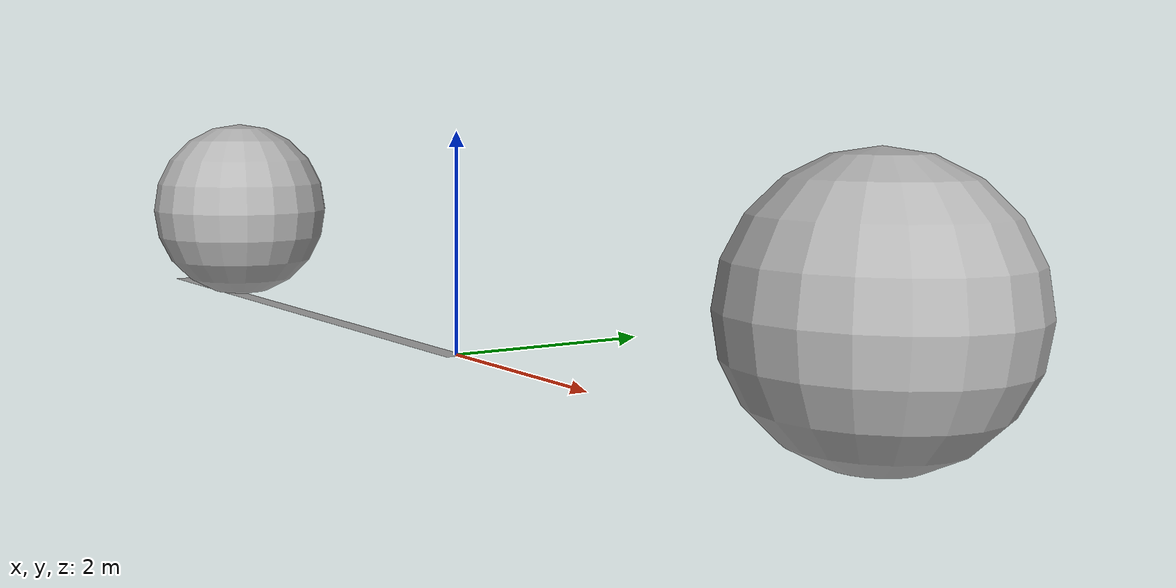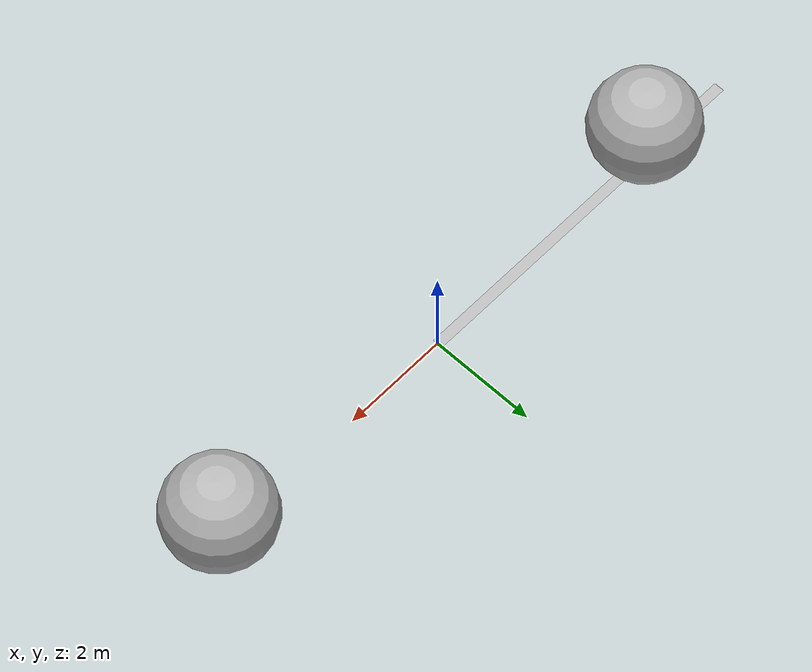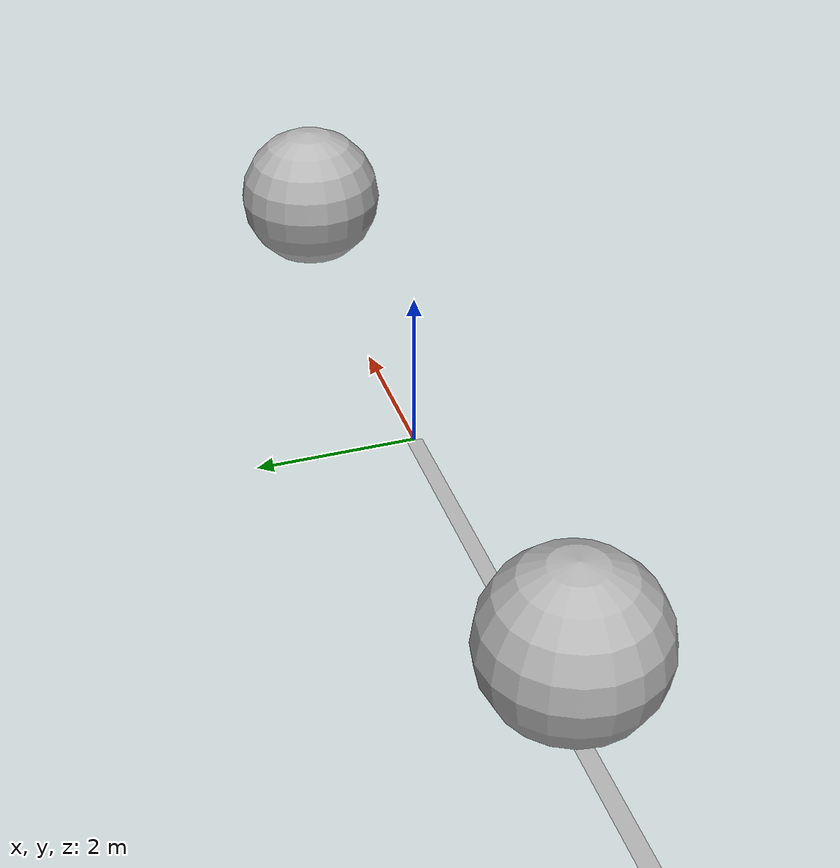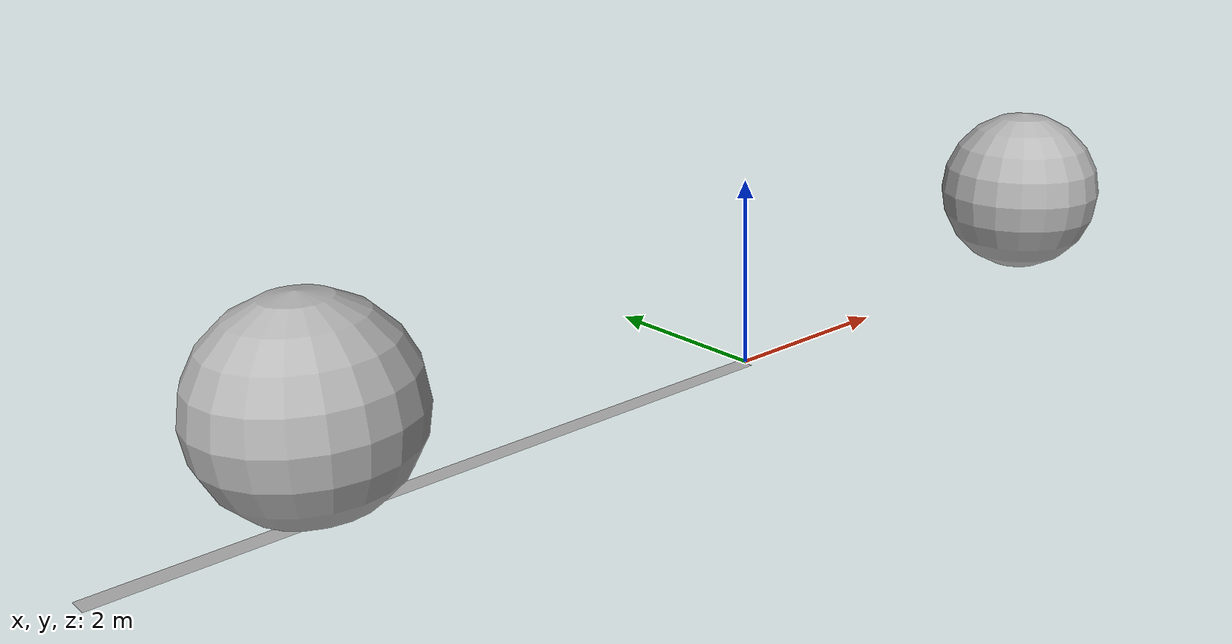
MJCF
<mujoco>
  <option gravity="0 0 -9.81" />
  <worldbody>
    <body name="object_3" pos="-5 0 0">
      <geom type="plane" size="5 0.1 10" rgba="0.7 0.7 0.7 1" friction="0.2 0.2 0.2" />
    </body>
    <body name="object_4" pos="5 0 0">
      <geom type="plane" size="5 0.1 10" rgba="0.7 0.7 0.7 1" friction="0.2 0.2 0.2" />
    </body>
    <body name="object_5" pos="0 0 -10">
      <geom type="plane" size="30 30 0.1" rgba="0.7 0.7 0.7 1" friction="1 1 1" />
    </body>
    <body name="block_1" pos="-5.0 0.0 1.0"><geom type="sphere" size="1.0" rgba="0.7 0.7 0.7 1" /></body><body name="block_2" pos="5.0 0.0 1.0"><geom type="sphere" size="1.0" rgba="0.7 0.7 0.7 1" /></body></worldbody>
</mujoco>
